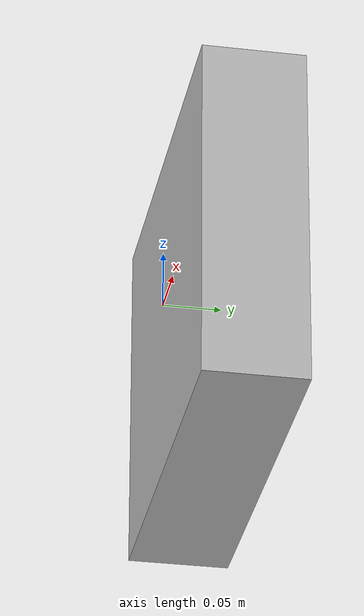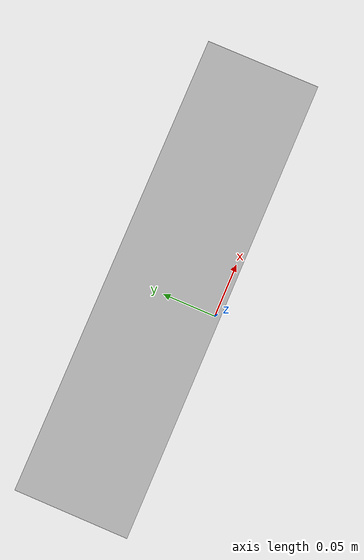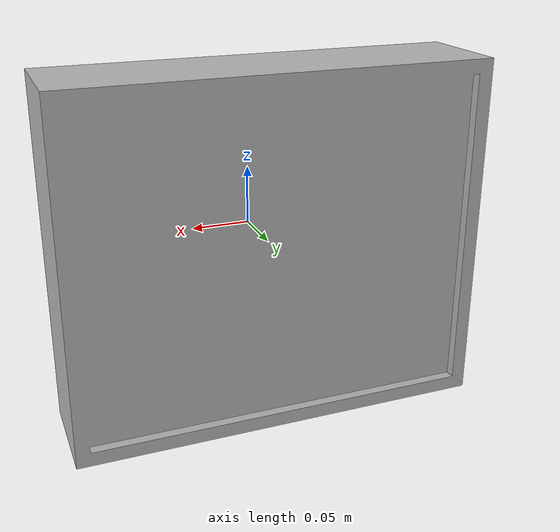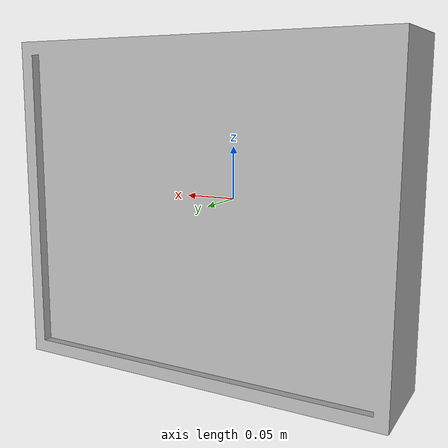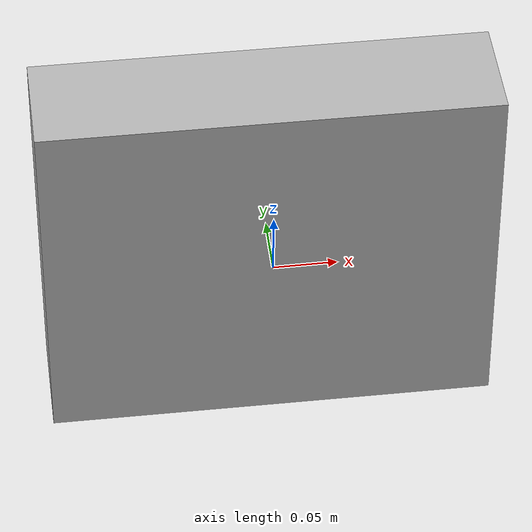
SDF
<?xml version="1.0" ?>
<sdf version="1.4">
  <model name="shelf2_box2_3b">
    <link name="body">
      <pose>0 0 0 0 0 0</pose>
      <inertial>
        <pose>  -0.000597   0.043641  -0.004050 0 0 0</pose>
        <mass>0.5</mass>
        <inertia>
          <ixx>0.01</ixx>
          <ixy>0</ixy>
          <ixz>0</ixz>
          <iyy>0.01</iyy>
          <iyz>0</iyz>
          <izz>0.01</izz>
        </inertia>
      </inertial>
      <collision name="collision">
        <geometry>
          <mesh>
            <uri>model://bookshelf/shelf2_items/box2_3b/box2_3b.dae</uri>
          </mesh>
        </geometry>
      </collision>
      <visual name="visual">
        <geometry>
          <mesh>
            <uri>model://bookshelf/shelf2_items/box2_3b/box2_3b.dae</uri>
          </mesh>
        </geometry>
      </visual>
    </link>
  </model>
</sdf>
